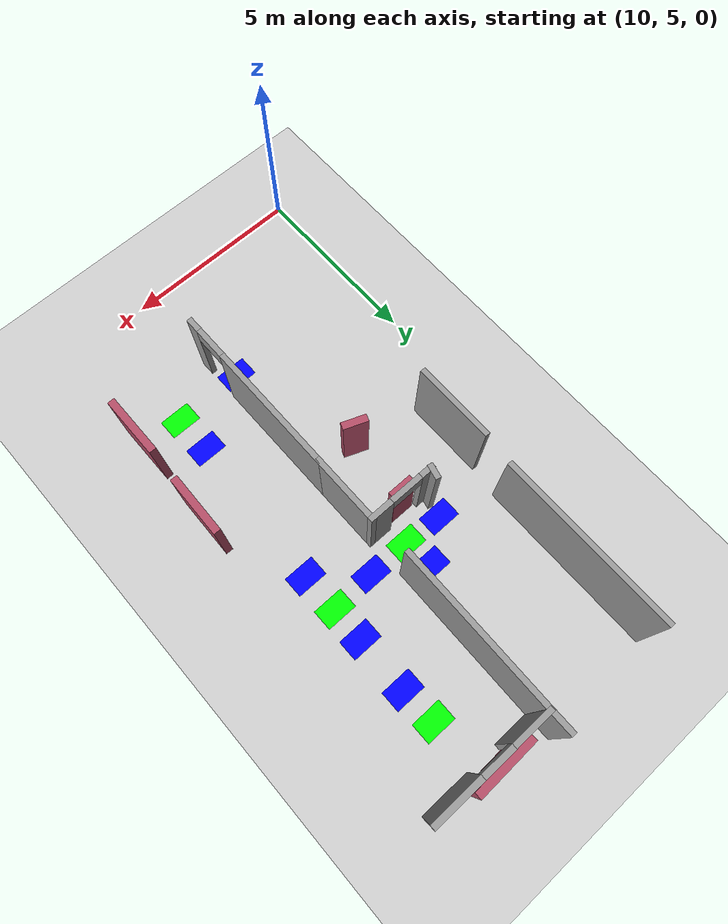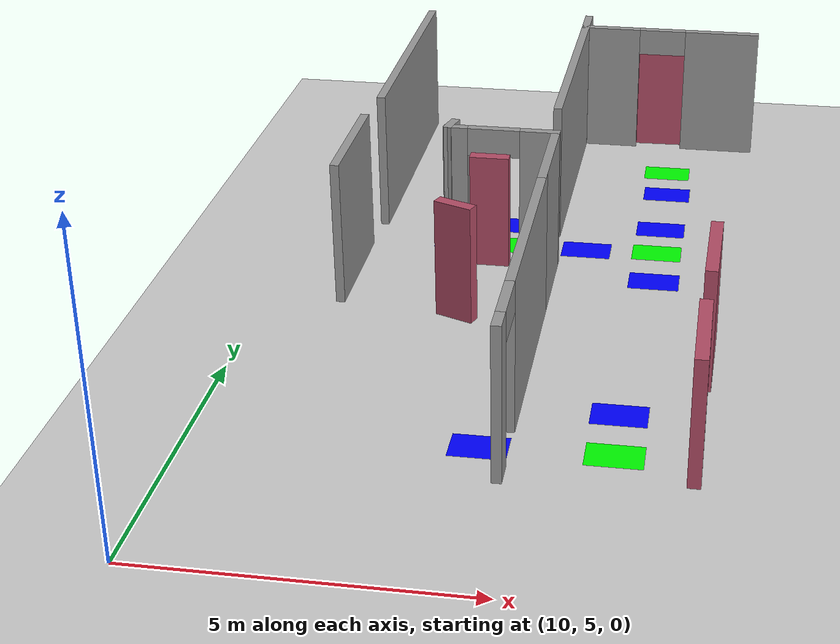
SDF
<sdf version="1.6">
 <world name="default">
  <model name="ground_plane">
   <pose>0 0 0.001 0 -0 0</pose>
   <static>1</static>
   <link name="link">
    <collision name="collision">
     <geometry><plane><normal>0 0 1</normal><size>100 100</size></plane></geometry>
     <surface><friction><ode><mu>100</mu><mu2>50</mu2></ode></friction></surface>
    </collision>
    <visual name="visual">
     <cast_shadows>0</cast_shadows>
     <geometry><plane><normal>0 0 1</normal><size>100 100</size></plane></geometry>
     <material>
      <script><uri>file://media/materials/scripts/gazebo.material</uri><name>Gazebo/Grey</name></script>
     </material>
    </visual>
   </link>
  </model>
  <model name="fin_se1f1.sdf">
   <pose>1.8125 -2.2901 0 0 -0 0</pose>
   <link name="Wall_140">
    <collision name="Wall_140_Collision">
     <geometry><box><size>2 0.15 2.5</size></box></geometry>
     <pose>0 0 1.25 0 -0 0</pose>
    </collision>
    <visual name="Wall_140_Visual">
     <pose>0 0 1.25 0 -0 0</pose>
     <geometry><box><size>2 0.15 2.5</size></box></geometry>
     <material>
      <script><uri>file://media/materials/scripts/gazebo.material</uri><name>Gazebo/Grey</name></script>
      <ambient>1 1 1 1</ambient>
     </material>
     <meta><layer>0</layer></meta>
    </visual>
    <pose>12.848 15.6146 0 0 -0 1.5708</pose>
   </link>
   <link name="Wall_141">
    <pose>11.923 16.5396 0 0 -0 3.14159</pose>
    <visual name="Wall_141_Visual_0">
     <pose>-0.657066 0 1.25 0 -0 0</pose>
     <geometry><box><size>0.685867 0.15 2.5</size></box></geometry>
     <material>
      <script><uri>file://media/materials/scripts/gazebo.material</uri><name>Gazebo/Grey</name></script>
      <ambient>1 1 1 1</ambient>
     </material>
     <meta><layer>0</layer></meta>
    </visual>
    <collision name="Wall_141_Collision_0">
     <geometry><box><size>0.685867 0.15 2.5</size></box></geometry>
     <pose>-0.657066 0 1.25 0 -0 0</pose>
    </collision>
    <visual name="Wall_141_Visual_1">
     <pose>0.792934 0 1.25 0 -0 0</pose>
     <geometry><box><size>0.414133 0.15 2.5</size></box></geometry>
     <material>
      <script><uri>file://media/materials/scripts/gazebo.material</uri><name>Gazebo/Grey</name></script>
      <ambient>1 1 1 1</ambient>
     </material>
     <meta><layer>0</layer></meta>
    </visual>
    <collision name="Wall_141_Collision_1">
     <geometry><box><size>0.414133 0.15 2.5</size></box></geometry>
     <pose>0.792934 0 1.25 0 -0 0</pose>
    </collision>
    <visual name="Wall_141_Visual_2">
     <pose>0.135867 0 2.25 0 -0 0</pose>
     <geometry><box><size>0.9 0.15 0.5</size></box></geometry>
     <material>
      <script><uri>file://media/materials/scripts/gazebo.material</uri><name>Gazebo/Grey</name></script>
      <ambient>1 1 1 1</ambient>
     </material>
     <meta><layer>0</layer></meta>
    </visual>
    <collision name="Wall_141_Collision_2">
     <geometry><box><size>0.9 0.15 0.5</size></box></geometry>
     <pose>0.135867 0 2.25 0 -0 0</pose>
    </collision>
   </link>
   <link name="Wall_146">
    <collision name="Wall_146_Collision">
     <geometry><box><size>0.406976 0.15 2.5</size></box></geometry>
     <pose>0 0 1.25 0 -0 0</pose>
    </collision>
    <visual name="Wall_146_Visual">
     <pose>0 0 1.25 0 -0 0</pose>
     <geometry><box><size>0.406976 0.15 2.5</size></box></geometry>
     <material>
      <script><uri>file://media/materials/scripts/gazebo.material</uri><name>Gazebo/Grey</name></script>
      <ambient>1 1 1 1</ambient>
     </material>
     <meta><layer>0</layer></meta>
    </visual>
    <pose>11.0277 16.6646 0 0 0 -1.80434</pose>
   </link>
   <link name="Wall_148">
    <collision name="Wall_148_Collision">
     <geometry><box><size>2.25 0.15 2.5</size></box></geometry>
     <pose>0 0 1.25 0 -0 0</pose>
    </collision>
    <visual name="Wall_148_Visual">
     <pose>0 0 1.25 0 -0 0</pose>
     <geometry><box><size>2.25 0.15 2.5</size></box></geometry>
     <material>
      <script><uri>file://media/materials/scripts/gazebo.material</uri><name>Gazebo/Grey</name></script>
      <ambient>1 1 1 1</ambient>
     </material>
     <meta><layer>0</layer></meta>
    </visual>
    <pose>9.46821 15.7262 0 0 0 -1.5708</pose>
   </link>
   <link name="Wall_19">
    <pose>14.4754 22.1246 0 0 -0 3.14159</pose>
    <visual name="Wall_19_Visual_0">
     <pose>-1.03305 0 1.25 0 -0 0</pose>
     <geometry><box><size>1.43389 0.15 2.5</size></box></geometry>
     <material>
      <script><uri>file://media/materials/scripts/gazebo.material</uri><name>Gazebo/Grey</name></script>
      <ambient>1 1 1 1</ambient>
     </material>
     <meta><layer>0</layer></meta>
    </visual>
    <collision name="Wall_19_Collision_0">
     <geometry><box><size>1.43389 0.15 2.5</size></box></geometry>
     <pose>-1.03305 0 1.25 0 -0 0</pose>
    </collision>
    <visual name="Wall_19_Visual_1">
     <pose>1.16695 0 1.25 0 -0 0</pose>
     <geometry><box><size>1.16611 0.15 2.5</size></box></geometry>
     <material>
      <script><uri>file://media/materials/scripts/gazebo.material</uri><name>Gazebo/Grey</name></script>
      <ambient>1 1 1 1</ambient>
     </material>
     <meta><layer>0</layer></meta>
    </visual>
    <collision name="Wall_19_Collision_1">
     <geometry><box><size>1.16611 0.15 2.5</size></box></geometry>
     <pose>1.16695 0 1.25 0 -0 0</pose>
    </collision>
    <visual name="Wall_19_Visual_2">
     <pose>0.133892 0 2.25 0 -0 0</pose>
     <geometry><box><size>0.9 0.15 0.5</size></box></geometry>
     <material>
      <script><uri>file://media/materials/scripts/gazebo.material</uri><name>Gazebo/Grey</name></script>
      <ambient>1 1 1 1</ambient>
     </material>
     <meta><layer>0</layer></meta>
    </visual>
    <collision name="Wall_19_Collision_2">
     <geometry><box><size>0.9 0.15 0.5</size></box></geometry>
     <pose>0.133892 0 2.25 0 -0 0</pose>
    </collision>
   </link>
   <link name="Wall_20">
    <collision name="Wall_20_Collision">
     <geometry><box><size>0.75 0.15 2.5</size></box></geometry>
     <pose>0 0 1.25 0 -0 0</pose>
    </collision>
    <visual name="Wall_20_Visual">
     <pose>0 0 1.25 0 -0 0</pose>
     <geometry><box><size>0.75 0.15 2.5</size></box></geometry>
     <material>
      <script><uri>file://media/materials/scripts/gazebo.material</uri><name>Gazebo/Grey</name></script>
      <ambient>1 1 1 1</ambient>
     </material>
     <meta><layer>0</layer></meta>
    </visual>
    <pose>12.8004 22.4246 0 0 -0 1.5708</pose>
   </link>
   <link name="Wall_70">
    <collision name="Wall_70_Collision">
     <geometry><box><size>4.60106 0.15 2.5</size></box></geometry>
     <pose>0 0 1.25 0 -0 0</pose>
    </collision>
    <visual name="Wall_70_Visual">
     <pose>0 0 1.25 0 -0 0</pose>
     <geometry><box><size>4.60106 0.15 2.5</size></box></geometry>
     <material>
      <script><uri>file://media/materials/scripts/gazebo.material</uri><name>Gazebo/Grey</name></script>
      <ambient>1 1 1 1</ambient>
     </material>
     <meta><layer>0</layer></meta>
    </visual>
    <pose>12.7793 19.8991 0 0 -0 1.5613</pose>
   </link>
   <link name="Wall_72">
    <collision name="Wall_72_Collision">
     <geometry><box><size>5 0.15 2.5</size></box></geometry>
     <pose>0 0 1.25 0 -0 0</pose>
    </collision>
    <visual name="Wall_72_Visual">
     <pose>0 0 1.25 0 -0 0</pose>
     <geometry><box><size>5 0.15 2.5</size></box></geometry>
     <material>
      <script><uri>file://media/materials/scripts/gazebo.material</uri><name>Gazebo/Grey</name></script>
      <ambient>1 1 1 1</ambient>
     </material>
     <meta><layer>0</layer></meta>
    </visual>
    <pose>9.57098 20.1709 0 0 0 -1.5708</pose>
   </link>
   <link name="Wall_89">
    <pose>12.848 12.2646 0 0 0 -1.5708</pose>
    <visual name="Wall_89_Visual_0">
     <pose>-0.649847 0 1.25 0 -0 0</pose>
     <geometry><box><size>3.70031 0.15 2.5</size></box></geometry>
     <material>
      <script><uri>file://media/materials/scripts/gazebo.material</uri><name>Gazebo/Grey</name></script>
      <ambient>1 1 1 1</ambient>
     </material>
     <meta><layer>0</layer></meta>
    </visual>
    <collision name="Wall_89_Collision_0">
     <geometry><box><size>3.70031 0.15 2.5</size></box></geometry>
     <pose>-0.649847 0 1.25 0 -0 0</pose>
    </collision>
    <visual name="Wall_89_Visual_1">
     <pose>2.30015 0 1.25 0 -0 0</pose>
     <geometry><box><size>0.399694 0.15 2.5</size></box></geometry>
     <material>
      <script><uri>file://media/materials/scripts/gazebo.material</uri><name>Gazebo/Grey</name></script>
      <ambient>1 1 1 1</ambient>
     </material>
     <meta><layer>0</layer></meta>
    </visual>
    <collision name="Wall_89_Collision_1">
     <geometry><box><size>0.399694 0.15 2.5</size></box></geometry>
     <pose>2.30015 0 1.25 0 -0 0</pose>
    </collision>
    <visual name="Wall_89_Visual_2">
     <pose>1.65031 0 2.25 0 -0 0</pose>
     <geometry><box><size>0.9 0.15 0.5</size></box></geometry>
     <material>
      <script><uri>file://media/materials/scripts/gazebo.material</uri><name>Gazebo/Grey</name></script>
      <ambient>1 1 1 1</ambient>
     </material>
     <meta><layer>0</layer></meta>
    </visual>
    <collision name="Wall_89_Collision_2">
     <geometry><box><size>0.9 0.15 0.5</size></box></geometry>
     <pose>1.65031 0 2.25 0 -0 0</pose>
    </collision>
   </link>
   <static>1</static>
  </model>
  <model name="doorOutside_clone_6">
   <link name="link">
    <pose>0.155539 -0.366282 0.216958 0 -0 0</pose>
    <inertial>
     <mass>2.13199</mass>
     <inertia>
      <ixx>0.452656</ixx>
      <ixy>0</ixy>
      <ixz>0</ixz>
      <iyy>0.796738</iyy>
      <iyz>0</iyz>
      <izz>0.699414</izz>
     </inertia>
     <pose>0 0 0.001 0 -0 0</pose>
    </inertial>
    <visual name="visual">
     <geometry><box><size>1.71368 0.198843 2.05986</size></box></geometry>
     <material>
      <script><name>Gazebo/Grey</name><uri>file://media/materials/scripts/gazebo.material</uri></script>
      <ambient>0.7 0.3 0.4 1</ambient>
      <diffuse>0.7 0.7 0.7 1</diffuse>
      <specular>0.01 0.01 0.01 1</specular>
      <emissive>0 0 0 1</emissive>
      <shader type="vertex"><normal_map>__default__</normal_map></shader>
      <lighting>0</lighting>
     </material>
     <pose>0 0 0.001 0 -0 0</pose>
    </visual>
    <collision name="collision">
     <pose>0 0 0.001 0 -0 0</pose>
     <geometry><box><size>1.71368 0.198843 2.05986</size></box></geometry>
     <surface>
      <friction>
       <ode><mu>1</mu><mu2>1</mu2><fdir1>0 0 0</fdir1><slip1>0</slip1><slip2>0</slip2></ode>
       <torsional>
        <coefficient>1</coefficient>
        <patch_radius>0</patch_radius>
        <surface_radius>0</surface_radius>
        <use_patch_radius>1</use_patch_radius>
        <ode><slip>0</slip></ode>
       </torsional>
      </friction>
      <bounce><restitution_coefficient>0</restitution_coefficient><threshold>1e+06</threshold></bounce>
      <contact>
       <collide_without_contact>0</collide_without_contact>
       <collide_without_contact_bitmask>1</collide_without_contact_bitmask>
       <collide_bitmask>1</collide_bitmask>
       <ode>
        <soft_cfm>0</soft_cfm>
        <soft_erp>0.2</soft_erp>
        <kp>1e+13</kp>
        <kd>1</kd>
        <max_vel>0.01</max_vel>
        <min_depth>0</min_depth>
       </ode>
       <bullet>
        <split_impulse>1</split_impulse>
        <split_impulse_penetration_threshold>-0.01</split_impulse_penetration_threshold>
        <soft_cfm>0</soft_cfm>
        <soft_erp>0.2</soft_erp>
        <kp>1e+13</kp>
        <kd>1</kd>
       </bullet>
      </contact>
     </surface>
    </collision>
   </link>
   <static>1</static>
   <pose>15.8897 20.4131 0.812972 0 -0 0.023072</pose>
  </model>
  <model name="corridor_3">
   <link name="link">
    <pose>0 0 0.001 0 -0 0</pose>
    <inertial>
     <mass>0.0352517</mass>
     <inertia>
      <ixx>0.00099707</ixx>
      <ixy>0</ixy>
      <ixz>0</ixz>
      <iyy>0.00220147</iyy>
      <iyz>0</iyz>
      <izz>0.0031692</izz>
     </inertia>
     <pose>0 0 0.001 0 -0 0</pose>
    </inertial>
    <visual name="visual">
     <geometry><box><size>0.862743 0.578289 1e-06</size></box></geometry>
     <material>
      <script><name>Gazebo/Grey</name><uri>file://media/materials/scripts/gazebo.material</uri></script>
      <ambient>0 1 0 1</ambient>
      <diffuse>0 1 0 1</diffuse>
      <specular>0 1 0 1</specular>
      <emissive>0 1 0 1</emissive>
      <shader type="vertex"><normal_map>__default__</normal_map></shader>
     </material>
     <pose>0 0 0.001 0 -0 0</pose>
    </visual>
    <collision name="collision">
     <pose>0 0 0.001 0 -0 0</pose>
     <geometry><box><size>0.862743 0.578289 0.000477</size></box></geometry>
     <surface>
      <friction>
       <ode><mu>1</mu><mu2>1</mu2><fdir1>0 0 0</fdir1><slip1>0</slip1><slip2>0</slip2></ode>
       <torsional>
        <coefficient>1</coefficient>
        <patch_radius>0</patch_radius>
        <surface_radius>0</surface_radius>
        <use_patch_radius>1</use_patch_radius>
        <ode><slip>0</slip></ode>
       </torsional>
      </friction>
      <bounce><restitution_coefficient>0</restitution_coefficient><threshold>1e+06</threshold></bounce>
      <contact>
       <collide_without_contact>0</collide_without_contact>
       <collide_without_contact_bitmask>1</collide_without_contact_bitmask>
       <collide_bitmask>1</collide_bitmask>
       <ode>
        <soft_cfm>0</soft_cfm>
        <soft_erp>0.2</soft_erp>
        <kp>1e+13</kp>
        <kd>1</kd>
        <max_vel>0.01</max_vel>
        <min_depth>0</min_depth>
       </ode>
       <bullet>
        <split_impulse>1</split_impulse>
        <split_impulse_penetration_threshold>-0.01</split_impulse_penetration_threshold>
        <soft_cfm>0</soft_cfm>
        <soft_erp>0.2</soft_erp>
        <kp>1e+13</kp>
        <kd>1</kd>
       </bullet>
      </contact>
     </surface>
    </collision>
   </link>
   <static>1</static>
   <pose>16.4282 14.8983 0 0 -0 0</pose>
  </model>
  <model name="corridor_4">
   <link name="link">
    <pose>0 0 0.001 0 -0 0</pose>
    <inertial>
     <mass>0.0352517</mass>
     <inertia>
      <ixx>0.00099707</ixx>
      <ixy>0</ixy>
      <ixz>0</ixz>
      <iyy>0.00220147</iyy>
      <iyz>0</iyz>
      <izz>0.0031692</izz>
     </inertia>
     <pose>0 0 0.001 0 -0 0</pose>
    </inertial>
    <visual name="visual">
     <geometry><box><size>0.862743 0.578289 1e-06</size></box></geometry>
     <material>
      <script><name>Gazebo/Grey</name><uri>file://media/materials/scripts/gazebo.material</uri></script>
      <ambient>0 1 0 1</ambient>
      <diffuse>0 1 0 1</diffuse>
      <specular>0 1 0 1</specular>
      <emissive>0 1 0 1</emissive>
      <shader type="vertex"><normal_map>__default__</normal_map></shader>
     </material>
     <pose>0 0 0.001 0 -0 0</pose>
    </visual>
    <collision name="collision">
     <pose>0 0 0.001 0 -0 0</pose>
     <geometry><box><size>0.862743 0.578289 0.000477</size></box></geometry>
     <surface>
      <friction>
       <ode><mu>1</mu><mu2>1</mu2><fdir1>0 0 0</fdir1><slip1>0</slip1><slip2>0</slip2></ode>
       <torsional>
        <coefficient>1</coefficient>
        <patch_radius>0</patch_radius>
        <surface_radius>0</surface_radius>
        <use_patch_radius>1</use_patch_radius>
        <ode><slip>0</slip></ode>
       </torsional>
      </friction>
      <bounce><restitution_coefficient>0</restitution_coefficient><threshold>1e+06</threshold></bounce>
      <contact>
       <collide_without_contact>0</collide_without_contact>
       <collide_without_contact_bitmask>1</collide_without_contact_bitmask>
       <collide_bitmask>1</collide_bitmask>
       <ode>
        <soft_cfm>0</soft_cfm>
        <soft_erp>0.2</soft_erp>
        <kp>1e+13</kp>
        <kd>1</kd>
        <max_vel>0.01</max_vel>
        <min_depth>0</min_depth>
       </ode>
       <bullet>
        <split_impulse>1</split_impulse>
        <split_impulse_penetration_threshold>-0.01</split_impulse_penetration_threshold>
        <soft_cfm>0</soft_cfm>
        <soft_erp>0.2</soft_erp>
        <kp>1e+13</kp>
        <kd>1</kd>
       </bullet>
      </contact>
     </surface>
    </collision>
   </link>
   <static>1</static>
   <pose>16.4205 18.4455 0 0 -0 0</pose>
  </model>
  <model name="corridor_5">
   <link name="link">
    <pose>0 0 0.001 0 -0 0</pose>
    <inertial>
     <mass>0.0352517</mass>
     <inertia>
      <ixx>0.00099707</ixx>
      <ixy>0</ixy>
      <ixz>0</ixz>
      <iyy>0.00220147</iyy>
      <iyz>0</iyz>
      <izz>0.0031692</izz>
     </inertia>
     <pose>0 0 0.001 0 -0 0</pose>
    </inertial>
    <visual name="visual">
     <geometry><box><size>0.862743 0.578289 1e-06</size></box></geometry>
     <material>
      <script><name>Gazebo/Grey</name><uri>file://media/materials/scripts/gazebo.material</uri></script>
      <ambient>0 1 0 1</ambient>
      <diffuse>0 1 0 1</diffuse>
      <specular>0 1 0 1</specular>
      <emissive>0 1 0 1</emissive>
      <shader type="vertex"><normal_map>__default__</normal_map></shader>
     </material>
     <pose>0 0 0.001 0 -0 0</pose>
    </visual>
    <collision name="collision">
     <pose>0 0 0.001 0 -0 0</pose>
     <geometry><box><size>0.862743 0.578289 0.000477</size></box></geometry>
     <surface>
      <friction>
       <ode><mu>1</mu><mu2>1</mu2><fdir1>0 0 0</fdir1><slip1>0</slip1><slip2>0</slip2></ode>
       <torsional>
        <coefficient>1</coefficient>
        <patch_radius>0</patch_radius>
        <surface_radius>0</surface_radius>
        <use_patch_radius>1</use_patch_radius>
        <ode><slip>0</slip></ode>
       </torsional>
      </friction>
      <bounce><restitution_coefficient>0</restitution_coefficient><threshold>1e+06</threshold></bounce>
      <contact>
       <collide_without_contact>0</collide_without_contact>
       <collide_without_contact_bitmask>1</collide_without_contact_bitmask>
       <collide_bitmask>1</collide_bitmask>
       <ode>
        <soft_cfm>0</soft_cfm>
        <soft_erp>0.2</soft_erp>
        <kp>1e+13</kp>
        <kd>1</kd>
        <max_vel>0.01</max_vel>
        <min_depth>0</min_depth>
       </ode>
       <bullet>
        <split_impulse>1</split_impulse>
        <split_impulse_penetration_threshold>-0.01</split_impulse_penetration_threshold>
        <soft_cfm>0</soft_cfm>
        <soft_erp>0.2</soft_erp>
        <kp>1e+13</kp>
        <kd>1</kd>
       </bullet>
      </contact>
     </surface>
    </collision>
   </link>
   <static>1</static>
   <pose>16.2301 8.38374 0 0 -0 0</pose>
  </model>
  <model name="corridor_6">
   <link name="link">
    <pose>0 0 0.001 0 -0 0</pose>
    <inertial>
     <mass>0.0352517</mass>
     <inertia>
      <ixx>0.00099707</ixx>
      <ixy>0</ixy>
      <ixz>0</ixz>
      <iyy>0.00220147</iyy>
      <iyz>0</iyz>
      <izz>0.0031692</izz>
     </inertia>
     <pose>0 0 0.001 0 -0 0</pose>
    </inertial>
    <visual name="visual">
     <geometry><box><size>0.862743 0.578289 1e-06</size></box></geometry>
     <material>
      <script><name>Gazebo/Grey</name><uri>file://media/materials/scripts/gazebo.material</uri></script>
      <ambient>0 1 0 1</ambient>
      <diffuse>0 1 0 1</diffuse>
      <specular>0 1 0 1</specular>
      <emissive>0 1 0 1</emissive>
      <shader type="vertex"><normal_map>__default__</normal_map></shader>
     </material>
     <pose>0 0 0.001 0 -0 0</pose>
    </visual>
    <collision name="collision">
     <pose>0 0 0.001 0 -0 0</pose>
     <geometry><box><size>0.862743 0.578289 0.000477</size></box></geometry>
     <surface>
      <friction>
       <ode><mu>1</mu><mu2>1</mu2><fdir1>0 0 0</fdir1><slip1>0</slip1><slip2>0</slip2></ode>
       <torsional>
        <coefficient>1</coefficient>
        <patch_radius>0</patch_radius>
        <surface_radius>0</surface_radius>
        <use_patch_radius>1</use_patch_radius>
        <ode><slip>0</slip></ode>
       </torsional>
      </friction>
      <bounce><restitution_coefficient>0</restitution_coefficient><threshold>1e+06</threshold></bounce>
      <contact>
       <collide_without_contact>0</collide_without_contact>
       <collide_without_contact_bitmask>1</collide_without_contact_bitmask>
       <collide_bitmask>1</collide_bitmask>
       <ode>
        <soft_cfm>0</soft_cfm>
        <soft_erp>0.2</soft_erp>
        <kp>1e+13</kp>
        <kd>1</kd>
        <max_vel>0.01</max_vel>
        <min_depth>0</min_depth>
       </ode>
       <bullet>
        <split_impulse>1</split_impulse>
        <split_impulse_penetration_threshold>-0.01</split_impulse_penetration_threshold>
        <soft_cfm>0</soft_cfm>
        <soft_erp>0.2</soft_erp>
        <kp>1e+13</kp>
        <kd>1</kd>
       </bullet>
      </contact>
     </surface>
    </collision>
   </link>
   <static>1</static>
   <pose>13.9844 14.8404 0 0 -0 0</pose>
  </model>
  <model name="doorInside_0">
   <link name="link">
    <pose>0.712274 -0.220649 0.216958 0 -0 0</pose>
    <inertial>
     <mass>0.840612</mass>
     <inertia>
      <ixx>0.178476</ixx>
      <ixy>0</ixy>
      <ixz>0</ixz>
      <iyy>0.140406</iyy>
      <iyz>0</iyz>
      <izz>0.102032</izz>
     </inertia>
     <pose>0 0 0.001 0 -0 0</pose>
    </inertial>
    <visual name="visual">
     <geometry><box><size>0.675678 0.198843 2.05986</size></box></geometry>
     <material>
      <script><name>Gazebo/Grey</name><uri>file://media/materials/scripts/gazebo.material</uri></script>
      <ambient>0.7 0.3 0.4 1</ambient>
      <diffuse>0.7 0.7 0.7 1</diffuse>
      <specular>0.01 0.01 0.01 1</specular>
      <emissive>1 0 0 1</emissive>
      <shader type="vertex"><normal_map>__default__</normal_map></shader>
      <lighting>0</lighting>
     </material>
     <pose>0 0 0.001 0 -0 0</pose>
    </visual>
    <collision name="collision">
     <pose>0 0 0.001 0 -0 0</pose>
     <geometry><box><size>0.675678 0.198843 2.05986</size></box></geometry>
     <surface>
      <friction>
       <ode><mu>1</mu><mu2>1</mu2><fdir1>0 0 0</fdir1><slip1>0</slip1><slip2>0</slip2></ode>
       <torsional>
        <coefficient>1</coefficient>
        <patch_radius>0</patch_radius>
        <surface_radius>0</surface_radius>
        <use_patch_radius>1</use_patch_radius>
        <ode><slip>0</slip></ode>
       </torsional>
      </friction>
      <bounce><restitution_coefficient>0</restitution_coefficient><threshold>1e+06</threshold></bounce>
      <contact>
       <collide_without_contact>0</collide_without_contact>
       <collide_without_contact_bitmask>1</collide_without_contact_bitmask>
       <collide_bitmask>1</collide_bitmask>
       <ode>
        <soft_cfm>0</soft_cfm>
        <soft_erp>0.2</soft_erp>
        <kp>1e+13</kp>
        <kd>1</kd>
        <max_vel>0.01</max_vel>
        <min_depth>0</min_depth>
       </ode>
       <bullet>
        <split_impulse>1</split_impulse>
        <split_impulse_penetration_threshold>-0.01</split_impulse_penetration_threshold>
        <soft_cfm>0</soft_cfm>
        <soft_erp>0.2</soft_erp>
        <kp>1e+13</kp>
        <kd>1</kd>
       </bullet>
      </contact>
     </surface>
    </collision>
   </link>
   <static>0</static>
   <pose>12.8403 14.3182 0.817895 0.018961 -0 -3e-06</pose>
  </model>
  <model name="doorInside_3">
   <link name="link">
    <pose>0.712274 -0.220649 0.216958 0 -0 0</pose>
    <inertial>
     <mass>0.840612</mass>
     <inertia>
      <ixx>0.178476</ixx>
      <ixy>0</ixy>
      <ixz>0</ixz>
      <iyy>0.140406</iyy>
      <iyz>0</iyz>
      <izz>0.102032</izz>
     </inertia>
     <pose>0 0 0.001 0 -0 0</pose>
    </inertial>
    <visual name="visual">
     <geometry><box><size>0.675678 0.198843 2.05986</size></box></geometry>
     <material>
      <script><name>Gazebo/Grey</name><uri>file://media/materials/scripts/gazebo.material</uri></script>
      <ambient>0.7 0.3 0.4 1</ambient>
      <diffuse>0.7 0.7 0.7 1</diffuse>
      <specular>0.01 0.01 0.01 1</specular>
      <emissive>1 0 0 1</emissive>
      <shader type="vertex"><normal_map>__default__</normal_map></shader>
      <lighting>0</lighting>
     </material>
     <pose>0 0 0.001 0 -0 0</pose>
    </visual>
    <collision name="collision">
     <pose>0 0 0.001 0 -0 0</pose>
     <geometry><box><size>0.675678 0.198843 2.05986</size></box></geometry>
     <surface>
      <friction>
       <ode><mu>1</mu><mu2>1</mu2><fdir1>0 0 0</fdir1><slip1>0</slip1><slip2>0</slip2></ode>
       <torsional>
        <coefficient>1</coefficient>
        <patch_radius>0</patch_radius>
        <surface_radius>0</surface_radius>
        <use_patch_radius>1</use_patch_radius>
        <ode><slip>0</slip></ode>
       </torsional>
      </friction>
      <bounce><restitution_coefficient>0</restitution_coefficient><threshold>1e+06</threshold></bounce>
      <contact>
       <collide_without_contact>0</collide_without_contact>
       <collide_without_contact_bitmask>1</collide_without_contact_bitmask>
       <collide_bitmask>1</collide_bitmask>
       <ode>
        <soft_cfm>0</soft_cfm>
        <soft_erp>0.2</soft_erp>
        <kp>1e+13</kp>
        <kd>1</kd>
        <max_vel>0.01</max_vel>
        <min_depth>0</min_depth>
       </ode>
       <bullet>
        <split_impulse>1</split_impulse>
        <split_impulse_penetration_threshold>-0.01</split_impulse_penetration_threshold>
        <soft_cfm>0</soft_cfm>
        <soft_erp>0.2</soft_erp>
        <kp>1e+13</kp>
        <kd>1</kd>
       </bullet>
      </contact>
     </surface>
    </collision>
   </link>
   <static>0</static>
   <pose>12.7119 12.574 0.811971 -0 -1e-06 -0.373698</pose>
  </model>
  <model name="intersection_11">
   <link name="link">
    <pose>0 0 0.001 0 -0 0</pose>
    <inertial>
     <mass>0.0352517</mass>
     <inertia>
      <ixx>0.000997067</ixx>
      <ixy>0</ixy>
      <ixz>0</ixz>
      <iyy>0.00220147</iyy>
      <iyz>0</iyz>
      <izz>0.0031692</izz>
     </inertia>
     <pose>0 0 0.001 0 -0 0</pose>
    </inertial>
    <visual name="visual">
     <geometry><box><size>0.862743 0.578289 1e-06</size></box></geometry>
     <material>
      <script><name>Gazebo/Grey</name><uri>file://media/materials/scripts/gazebo.material</uri></script>
      <ambient>0 0 1 1</ambient>
      <diffuse>0 0 1 1</diffuse>
      <specular>0 0 1 1</specular>
      <emissive>0 0 1 1</emissive>
      <shader type="vertex"><normal_map>__default__</normal_map></shader>
     </material>
     <pose>0 0 0.001 0 -0 0</pose>
    </visual>
    <collision name="collision">
     <pose>0 0 0.001 0 -0 0</pose>
     <geometry><box><size>0.862743 0.578289 0.000477</size></box></geometry>
     <surface>
      <friction>
       <ode><mu>1</mu><mu2>1</mu2><fdir1>0 0 0</fdir1><slip1>0</slip1><slip2>0</slip2></ode>
       <torsional>
        <coefficient>1</coefficient>
        <patch_radius>0</patch_radius>
        <surface_radius>0</surface_radius>
        <use_patch_radius>1</use_patch_radius>
        <ode><slip>0</slip></ode>
       </torsional>
      </friction>
      <bounce><restitution_coefficient>0</restitution_coefficient><threshold>1e+06</threshold></bounce>
      <contact>
       <collide_without_contact>0</collide_without_contact>
       <collide_without_contact_bitmask>1</collide_without_contact_bitmask>
       <collide_bitmask>1</collide_bitmask>
       <ode>
        <soft_cfm>0</soft_cfm>
        <soft_erp>0.2</soft_erp>
        <kp>1e+13</kp>
        <kd>1</kd>
        <max_vel>0.01</max_vel>
        <min_depth>0</min_depth>
       </ode>
       <bullet>
        <split_impulse>1</split_impulse>
        <split_impulse_penetration_threshold>-0.01</split_impulse_penetration_threshold>
        <soft_cfm>0</soft_cfm>
        <soft_erp>0.2</soft_erp>
        <kp>1e+13</kp>
        <kd>1</kd>
       </bullet>
      </contact>
     </surface>
    </collision>
   </link>
   <static>1</static>
   <pose>13.914 15.6604 0 0 -0 0</pose>
  </model>
  <model name="intersection_12">
   <link name="link">
    <pose>0 0 0.001 0 -0 0</pose>
    <inertial>
     <mass>0.0352517</mass>
     <inertia>
      <ixx>0.000997067</ixx>
      <ixy>0</ixy>
      <ixz>0</ixz>
      <iyy>0.00220147</iyy>
      <iyz>0</iyz>
      <izz>0.0031692</izz>
     </inertia>
     <pose>0 0 0.001 0 -0 0</pose>
    </inertial>
    <visual name="visual">
     <geometry><box><size>0.862743 0.578289 1e-06</size></box></geometry>
     <material>
      <script><name>Gazebo/Grey</name><uri>file://media/materials/scripts/gazebo.material</uri></script>
      <ambient>0 0 1 1</ambient>
      <diffuse>0 0 1 1</diffuse>
      <specular>0 0 1 1</specular>
      <emissive>0 0 1 1</emissive>
      <shader type="vertex"><normal_map>__default__</normal_map></shader>
     </material>
     <pose>0 0 0.001 0 -0 0</pose>
    </visual>
    <collision name="collision">
     <pose>0 0 0.001 0 -0 0</pose>
     <geometry><box><size>0.862743 0.578289 0.000477</size></box></geometry>
     <surface>
      <friction>
       <ode><mu>1</mu><mu2>1</mu2><fdir1>0 0 0</fdir1><slip1>0</slip1><slip2>0</slip2></ode>
       <torsional>
        <coefficient>1</coefficient>
        <patch_radius>0</patch_radius>
        <surface_radius>0</surface_radius>
        <use_patch_radius>1</use_patch_radius>
        <ode><slip>0</slip></ode>
       </torsional>
      </friction>
      <bounce><restitution_coefficient>0</restitution_coefficient><threshold>1e+06</threshold></bounce>
      <contact>
       <collide_without_contact>0</collide_without_contact>
       <collide_without_contact_bitmask>1</collide_without_contact_bitmask>
       <collide_bitmask>1</collide_bitmask>
       <ode>
        <soft_cfm>0</soft_cfm>
        <soft_erp>0.2</soft_erp>
        <kp>1e+13</kp>
        <kd>1</kd>
        <max_vel>0.01</max_vel>
        <min_depth>0</min_depth>
       </ode>
       <bullet>
        <split_impulse>1</split_impulse>
        <split_impulse_penetration_threshold>-0.01</split_impulse_penetration_threshold>
        <soft_cfm>0</soft_cfm>
        <soft_erp>0.2</soft_erp>
        <kp>1e+13</kp>
        <kd>1</kd>
       </bullet>
      </contact>
     </surface>
    </collision>
   </link>
   <static>1</static>
   <pose>14.2784 8.33451 0 0 -0 0</pose>
  </model>
  <model name="intersection_15">
   <link name="link">
    <pose>0 0 0.001 0 -0 0</pose>
    <inertial>
     <mass>0.0352517</mass>
     <inertia>
      <ixx>0.000997067</ixx>
      <ixy>0</ixy>
      <ixz>0</ixz>
      <iyy>0.00220147</iyy>
      <iyz>0</iyz>
      <izz>0.0031692</izz>
     </inertia>
     <pose>0 0 0.001 0 -0 0</pose>
    </inertial>
    <visual name="visual">
     <geometry><box><size>0.862743 0.578289 1e-06</size></box></geometry>
     <material>
      <script><name>Gazebo/Grey</name><uri>file://media/materials/scripts/gazebo.material</uri></script>
      <ambient>0 0 1 1</ambient>
      <diffuse>0 0 1 1</diffuse>
      <specular>0 0 1 1</specular>
      <emissive>0 0 1 1</emissive>
      <shader type="vertex"><normal_map>__default__</normal_map></shader>
     </material>
     <pose>0 0 0.001 0 -0 0</pose>
    </visual>
    <collision name="collision">
     <pose>0 0 0.001 0 -0 0</pose>
     <geometry><box><size>0.862743 0.578289 0.000477</size></box></geometry>
     <surface>
      <friction>
       <ode><mu>1</mu><mu2>1</mu2><fdir1>0 0 0</fdir1><slip1>0</slip1><slip2>0</slip2></ode>
       <torsional>
        <coefficient>1</coefficient>
        <patch_radius>0</patch_radius>
        <surface_radius>0</surface_radius>
        <use_patch_radius>1</use_patch_radius>
        <ode><slip>0</slip></ode>
       </torsional>
      </friction>
      <bounce><restitution_coefficient>0</restitution_coefficient><threshold>1e+06</threshold></bounce>
      <contact>
       <collide_without_contact>0</collide_without_contact>
       <collide_without_contact_bitmask>1</collide_without_contact_bitmask>
       <collide_bitmask>1</collide_bitmask>
       <ode>
        <soft_cfm>0</soft_cfm>
        <soft_erp>0.2</soft_erp>
        <kp>1e+13</kp>
        <kd>1</kd>
        <max_vel>0.01</max_vel>
        <min_depth>0</min_depth>
       </ode>
       <bullet>
        <split_impulse>1</split_impulse>
        <split_impulse_penetration_threshold>-0.01</split_impulse_penetration_threshold>
        <soft_cfm>0</soft_cfm>
        <soft_erp>0.2</soft_erp>
        <kp>1e+13</kp>
        <kd>1</kd>
       </bullet>
      </contact>
     </surface>
    </collision>
   </link>
   <static>1</static>
   <pose>16.2105 9.46404 0 0 -0 0</pose>
  </model>
  <model name="intersection_16">
   <link name="link">
    <pose>0 0 0.001 0 -0 0</pose>
    <inertial>
     <mass>0.0352517</mass>
     <inertia>
      <ixx>0.000997067</ixx>
      <ixy>0</ixy>
      <ixz>0</ixz>
      <iyy>0.00220147</iyy>
      <iyz>0</iyz>
      <izz>0.0031692</izz>
     </inertia>
     <pose>0 0 0.001 0 -0 0</pose>
    </inertial>
    <visual name="visual">
     <geometry><box><size>0.862743 0.578289 1e-06</size></box></geometry>
     <material>
      <script><name>Gazebo/Grey</name><uri>file://media/materials/scripts/gazebo.material</uri></script>
      <ambient>0 0 1 1</ambient>
      <diffuse>0 0 1 1</diffuse>
      <specular>0 0 1 1</specular>
      <emissive>0 0 1 1</emissive>
      <shader type="vertex"><normal_map>__default__</normal_map></shader>
     </material>
     <pose>0 0 0.001 0 -0 0</pose>
    </visual>
    <collision name="collision">
     <pose>0 0 0.001 0 -0 0</pose>
     <geometry><box><size>0.862743 0.578289 0.000477</size></box></geometry>
     <surface>
      <friction>
       <ode><mu>1</mu><mu2>1</mu2><fdir1>0 0 0</fdir1><slip1>0</slip1><slip2>0</slip2></ode>
       <torsional>
        <coefficient>1</coefficient>
        <patch_radius>0</patch_radius>
        <surface_radius>0</surface_radius>
        <use_patch_radius>1</use_patch_radius>
        <ode><slip>0</slip></ode>
       </torsional>
      </friction>
      <bounce><restitution_coefficient>0</restitution_coefficient><threshold>1e+06</threshold></bounce>
      <contact>
       <collide_without_contact>0</collide_without_contact>
       <collide_without_contact_bitmask>1</collide_without_contact_bitmask>
       <collide_bitmask>1</collide_bitmask>
       <ode>
        <soft_cfm>0</soft_cfm>
        <soft_erp>0.2</soft_erp>
        <kp>1e+13</kp>
        <kd>1</kd>
        <max_vel>0.01</max_vel>
        <min_depth>0</min_depth>
       </ode>
       <bullet>
        <split_impulse>1</split_impulse>
        <split_impulse_penetration_threshold>-0.01</split_impulse_penetration_threshold>
        <soft_cfm>0</soft_cfm>
        <soft_erp>0.2</soft_erp>
        <kp>1e+13</kp>
        <kd>1</kd>
       </bullet>
      </contact>
     </surface>
    </collision>
   </link>
   <static>1</static>
   <pose>16.4452 13.7991 0 0 -0 0</pose>
  </model>
  <model name="intersection_17">
   <link name="link">
    <pose>0 0 0.001 0 -0 0</pose>
    <inertial>
     <mass>0.0352517</mass>
     <inertia>
      <ixx>0.000997067</ixx>
      <ixy>0</ixy>
      <ixz>0</ixz>
      <iyy>0.00220147</iyy>
      <iyz>0</iyz>
      <izz>0.0031692</izz>
     </inertia>
     <pose>0 0 0.001 0 -0 0</pose>
    </inertial>
    <visual name="visual">
     <geometry><box><size>0.862743 0.578289 1e-06</size></box></geometry>
     <material>
      <script><name>Gazebo/Grey</name><uri>file://media/materials/scripts/gazebo.material</uri></script>
      <ambient>0 0 1 1</ambient>
      <diffuse>0 0 1 1</diffuse>
      <specular>0 0 1 1</specular>
      <emissive>0 0 1 1</emissive>
      <shader type="vertex"><normal_map>__default__</normal_map></shader>
     </material>
     <pose>0 0 0.001 0 -0 0</pose>
    </visual>
    <collision name="collision">
     <pose>0 0 0.001 0 -0 0</pose>
     <geometry><box><size>0.862743 0.578289 0.000477</size></box></geometry>
     <surface>
      <friction>
       <ode><mu>1</mu><mu2>1</mu2><fdir1>0 0 0</fdir1><slip1>0</slip1><slip2>0</slip2></ode>
       <torsional>
        <coefficient>1</coefficient>
        <patch_radius>0</patch_radius>
        <surface_radius>0</surface_radius>
        <use_patch_radius>1</use_patch_radius>
        <ode><slip>0</slip></ode>
       </torsional>
      </friction>
      <bounce><restitution_coefficient>0</restitution_coefficient><threshold>1e+06</threshold></bounce>
      <contact>
       <collide_without_contact>0</collide_without_contact>
       <collide_without_contact_bitmask>1</collide_without_contact_bitmask>
       <collide_bitmask>1</collide_bitmask>
       <ode>
        <soft_cfm>0</soft_cfm>
        <soft_erp>0.2</soft_erp>
        <kp>1e+13</kp>
        <kd>1</kd>
        <max_vel>0.01</max_vel>
        <min_depth>0</min_depth>
       </ode>
       <bullet>
        <split_impulse>1</split_impulse>
        <split_impulse_penetration_threshold>-0.01</split_impulse_penetration_threshold>
        <soft_cfm>0</soft_cfm>
        <soft_erp>0.2</soft_erp>
        <kp>1e+13</kp>
        <kd>1</kd>
       </bullet>
      </contact>
     </surface>
    </collision>
   </link>
   <static>1</static>
   <pose>16.4441 15.8646 0 0 -0 0</pose>
  </model>
  <model name="intersection_18">
   <link name="link">
    <pose>0 0 0.001 0 -0 0</pose>
    <inertial>
     <mass>0.0352517</mass>
     <inertia>
      <ixx>0.000997067</ixx>
      <ixy>0</ixy>
      <ixz>0</ixz>
      <iyy>0.00220147</iyy>
      <iyz>0</iyz>
      <izz>0.0031692</izz>
     </inertia>
     <pose>0 0 0.001 0 -0 0</pose>
    </inertial>
    <visual name="visual">
     <geometry><box><size>0.862743 0.578289 1e-06</size></box></geometry>
     <material>
      <script><name>Gazebo/Grey</name><uri>file://media/materials/scripts/gazebo.material</uri></script>
      <ambient>0 0 1 1</ambient>
      <diffuse>0 0 1 1</diffuse>
      <specular>0 0 1 1</specular>
      <emissive>0 0 1 1</emissive>
      <shader type="vertex"><normal_map>__default__</normal_map></shader>
     </material>
     <pose>0 0 0.001 0 -0 0</pose>
    </visual>
    <collision name="collision">
     <pose>0 0 0.001 0 -0 0</pose>
     <geometry><box><size>0.862743 0.578289 0.000477</size></box></geometry>
     <surface>
      <friction>
       <ode><mu>1</mu><mu2>1</mu2><fdir1>0 0 0</fdir1><slip1>0</slip1><slip2>0</slip2></ode>
       <torsional>
        <coefficient>1</coefficient>
        <patch_radius>0</patch_radius>
        <surface_radius>0</surface_radius>
        <use_patch_radius>1</use_patch_radius>
        <ode><slip>0</slip></ode>
       </torsional>
      </friction>
      <bounce><restitution_coefficient>0</restitution_coefficient><threshold>1e+06</threshold></bounce>
      <contact>
       <collide_without_contact>0</collide_without_contact>
       <collide_without_contact_bitmask>1</collide_without_contact_bitmask>
       <collide_bitmask>1</collide_bitmask>
       <ode>
        <soft_cfm>0</soft_cfm>
        <soft_erp>0.2</soft_erp>
        <kp>1e+13</kp>
        <kd>1</kd>
        <max_vel>0.01</max_vel>
        <min_depth>0</min_depth>
       </ode>
       <bullet>
        <split_impulse>1</split_impulse>
        <split_impulse_penetration_threshold>-0.01</split_impulse_penetration_threshold>
        <soft_cfm>0</soft_cfm>
        <soft_erp>0.2</soft_erp>
        <kp>1e+13</kp>
        <kd>1</kd>
       </bullet>
      </contact>
     </surface>
    </collision>
   </link>
   <static>1</static>
   <pose>16.4704 17.4354 0 0 -0 0</pose>
  </model>
  <model name="intersection_48">
   <link name="link">
    <pose>0 0 0.001 0 -0 0</pose>
    <inertial>
     <mass>0.0352517</mass>
     <inertia>
      <ixx>0.000997067</ixx>
      <ixy>0</ixy>
      <ixz>0</ixz>
      <iyy>0.00220147</iyy>
      <iyz>0</iyz>
      <izz>0.0031692</izz>
     </inertia>
     <pose>0 0 0.001 0 -0 0</pose>
    </inertial>
    <visual name="visual">
     <geometry><box><size>0.862743 0.578289 1e-06</size></box></geometry>
     <material>
      <script><name>Gazebo/Grey</name><uri>file://media/materials/scripts/gazebo.material</uri></script>
      <ambient>0 0 1 1</ambient>
      <diffuse>0 0 1 1</diffuse>
      <specular>0 0 1 1</specular>
      <emissive>0 0 1 1</emissive>
      <shader type="vertex"><normal_map>__default__</normal_map></shader>
     </material>
     <pose>0 0 0.001 0 -0 0</pose>
    </visual>
    <collision name="collision">
     <pose>0 0 0.001 0 -0 0</pose>
     <geometry><box><size>0.862743 0.578289 0.000477</size></box></geometry>
     <surface>
      <friction>
       <ode><mu>1</mu><mu2>1</mu2><fdir1>0 0 0</fdir1><slip1>0</slip1><slip2>0</slip2></ode>
       <torsional>
        <coefficient>1</coefficient>
        <patch_radius>0</patch_radius>
        <surface_radius>0</surface_radius>
        <use_patch_radius>1</use_patch_radius>
        <ode><slip>0</slip></ode>
       </torsional>
      </friction>
      <bounce><restitution_coefficient>0</restitution_coefficient><threshold>1e+06</threshold></bounce>
      <contact>
       <collide_without_contact>0</collide_without_contact>
       <collide_without_contact_bitmask>1</collide_without_contact_bitmask>
       <collide_bitmask>1</collide_bitmask>
       <ode>
        <soft_cfm>0</soft_cfm>
        <soft_erp>0.2</soft_erp>
        <kp>1e+13</kp>
        <kd>1</kd>
        <max_vel>0.01</max_vel>
        <min_depth>0</min_depth>
       </ode>
       <bullet>
        <split_impulse>1</split_impulse>
        <split_impulse_penetration_threshold>-0.01</split_impulse_penetration_threshold>
        <soft_cfm>0</soft_cfm>
        <soft_erp>0.2</soft_erp>
        <kp>1e+13</kp>
        <kd>1</kd>
       </bullet>
      </contact>
     </surface>
    </collision>
   </link>
   <static>1</static>
   <pose>15.1772 14.8407 0 0 -0 0</pose>
  </model>
  <model name="intersection_49">
   <link name="link">
    <pose>0 0 0.001 0 -0 0</pose>
    <inertial>
     <mass>0.0352517</mass>
     <inertia>
      <ixx>0.000997067</ixx>
      <ixy>0</ixy>
      <ixz>0</ixz>
      <iyy>0.00220147</iyy>
      <iyz>0</iyz>
      <izz>0.0031692</izz>
     </inertia>
     <pose>0 0 0.001 0 -0 0</pose>
    </inertial>
    <visual name="visual">
     <geometry><box><size>0.862743 0.578289 1e-06</size></box></geometry>
     <material>
      <script><name>Gazebo/Grey</name><uri>file://media/materials/scripts/gazebo.material</uri></script>
      <ambient>0 0 1 1</ambient>
      <diffuse>0 0 1 1</diffuse>
      <specular>0 0 1 1</specular>
      <emissive>0 0 1 1</emissive>
      <shader type="vertex"><normal_map>__default__</normal_map></shader>
     </material>
     <pose>0 0 0.001 0 -0 0</pose>
    </visual>
    <collision name="collision">
     <pose>0 0 0.001 0 -0 0</pose>
     <geometry><box><size>0.862743 0.578289 0.000477</size></box></geometry>
     <surface>
      <friction>
       <ode><mu>1</mu><mu2>1</mu2><fdir1>0 0 0</fdir1><slip1>0</slip1><slip2>0</slip2></ode>
       <torsional>
        <coefficient>1</coefficient>
        <patch_radius>0</patch_radius>
        <surface_radius>0</surface_radius>
        <use_patch_radius>1</use_patch_radius>
        <ode><slip>0</slip></ode>
       </torsional>
      </friction>
      <bounce><restitution_coefficient>0</restitution_coefficient><threshold>1e+06</threshold></bounce>
      <contact>
       <collide_without_contact>0</collide_without_contact>
       <collide_without_contact_bitmask>1</collide_without_contact_bitmask>
       <collide_bitmask>1</collide_bitmask>
       <ode>
        <soft_cfm>0</soft_cfm>
        <soft_erp>0.2</soft_erp>
        <kp>1e+13</kp>
        <kd>1</kd>
        <max_vel>0.01</max_vel>
        <min_depth>0</min_depth>
       </ode>
       <bullet>
        <split_impulse>1</split_impulse>
        <split_impulse_penetration_threshold>-0.01</split_impulse_penetration_threshold>
        <soft_cfm>0</soft_cfm>
        <soft_erp>0.2</soft_erp>
        <kp>1e+13</kp>
        <kd>1</kd>
       </bullet>
      </contact>
     </surface>
    </collision>
   </link>
   <static>1</static>
   <pose>12.8849 14.8931 0 0 -0 0</pose>
  </model>
  <model name="doorOutside_7">
   <link name="link">
    <pose>0.155539 -0.366282 0.216958 0 -0 0</pose>
    <inertial>
     <mass>2.13199</mass>
     <inertia>
      <ixx>0.452656</ixx>
      <ixy>0</ixy>
      <ixz>0</ixz>
      <iyy>0.796738</iyy>
      <iyz>0</iyz>
      <izz>0.699414</izz>
     </inertia>
    </inertial>
    <visual name="visual">
     <geometry><box><size>1.71368 0.198843 2.05986</size></box></geometry>
     <material>
      <script><name>Gazebo/Grey</name><uri>file://media/materials/scripts/gazebo.material</uri></script>
      <ambient>0.7 0.3 0.4 1</ambient>
      <diffuse>0.7 0.7 0.7 1</diffuse>
      <specular>0.01 0.01 0.01 1</specular>
      <emissive>0 0 0 1</emissive>
      <shader type="vertex"><normal_map>__default__</normal_map></shader>
      <lighting>0</lighting>
     </material>
    </visual>
    <collision name="collision">
     <geometry><box><size>1.71368 0.198843 2.05986</size></box></geometry>
     <surface>
      <friction>
       <ode><mu>1</mu><mu2>1</mu2><fdir1>0 0 0</fdir1><slip1>0</slip1><slip2>0</slip2></ode>
       <torsional>
        <coefficient>1</coefficient>
        <patch_radius>0</patch_radius>
        <surface_radius>0</surface_radius>
        <use_patch_radius>1</use_patch_radius>
        <ode><slip>0</slip></ode>
       </torsional>
      </friction>
      <bounce><restitution_coefficient>0</restitution_coefficient><threshold>1e+06</threshold></bounce>
      <contact>
       <collide_without_contact>0</collide_without_contact>
       <collide_without_contact_bitmask>1</collide_without_contact_bitmask>
       <collide_bitmask>1</collide_bitmask>
       <ode>
        <soft_cfm>0</soft_cfm>
        <soft_erp>0.2</soft_erp>
        <kp>1e+13</kp>
        <kd>1</kd>
        <max_vel>0.01</max_vel>
        <min_depth>0</min_depth>
       </ode>
       <bullet>
        <split_impulse>1</split_impulse>
        <split_impulse_penetration_threshold>-0.01</split_impulse_penetration_threshold>
        <soft_cfm>0</soft_cfm>
        <soft_erp>0.2</soft_erp>
        <kp>1e+13</kp>
        <kd>1</kd>
       </bullet>
      </contact>
     </surface>
    </collision>
   </link>
   <static>0</static>
   <pose>17.0784 11.0363 0.812972 0 -0 1.54891</pose>
  </model>
  <model name="doorOutside_7_clone">
   <link name="link">
    <pose>0.155539 -0.366282 0.216958 0 -0 0</pose>
    <inertial>
     <mass>2.13199</mass>
     <inertia>
      <ixx>0.452656</ixx>
      <ixy>0</ixy>
      <ixz>0</ixz>
      <iyy>0.796738</iyy>
      <iyz>0</iyz>
      <izz>0.699414</izz>
     </inertia>
    </inertial>
    <visual name="visual">
     <geometry><box><size>1.71368 0.198843 2.05986</size></box></geometry>
     <material>
      <script><name>Gazebo/Grey</name><uri>file://media/materials/scripts/gazebo.material</uri></script>
      <ambient>0.7 0.3 0.4 1</ambient>
      <diffuse>0.7 0.7 0.7 1</diffuse>
      <specular>0.01 0.01 0.01 1</specular>
      <emissive>0 0 0 1</emissive>
      <shader type="vertex"><normal_map>__default__</normal_map></shader>
      <lighting>0</lighting>
     </material>
    </visual>
    <collision name="collision">
     <geometry><box><size>1.71368 0.198843 2.05986</size></box></geometry>
     <surface>
      <friction>
       <ode><mu>1</mu><mu2>1</mu2><fdir1>0 0 0</fdir1><slip1>0</slip1><slip2>0</slip2></ode>
       <torsional>
        <coefficient>1</coefficient>
        <patch_radius>0</patch_radius>
        <surface_radius>0</surface_radius>
        <use_patch_radius>1</use_patch_radius>
        <ode><slip>0</slip></ode>
       </torsional>
      </friction>
      <bounce><restitution_coefficient>0</restitution_coefficient><threshold>1e+06</threshold></bounce>
      <contact>
       <collide_without_contact>0</collide_without_contact>
       <collide_without_contact_bitmask>1</collide_without_contact_bitmask>
       <collide_bitmask>1</collide_bitmask>
       <ode>
        <soft_cfm>0</soft_cfm>
        <soft_erp>0.2</soft_erp>
        <kp>1e+13</kp>
        <kd>1</kd>
        <max_vel>0.01</max_vel>
        <min_depth>0</min_depth>
       </ode>
       <bullet>
        <split_impulse>1</split_impulse>
        <split_impulse_penetration_threshold>-0.01</split_impulse_penetration_threshold>
        <soft_cfm>0</soft_cfm>
        <soft_erp>0.2</soft_erp>
        <kp>1e+13</kp>
        <kd>1</kd>
       </bullet>
      </contact>
     </surface>
    </collision>
   </link>
   <static>0</static>
   <pose>17.0119 8.44592 0.812972 0 -0 1.56714</pose>
  </model>
 </world>
</sdf>
